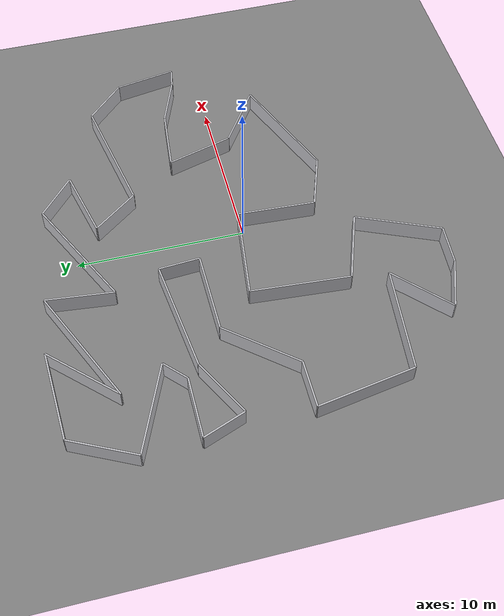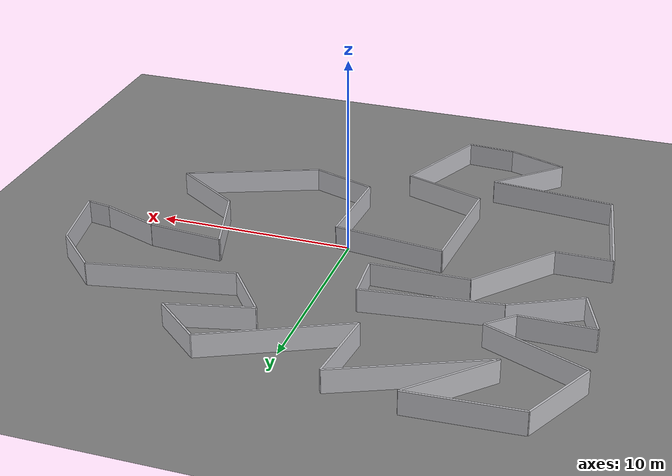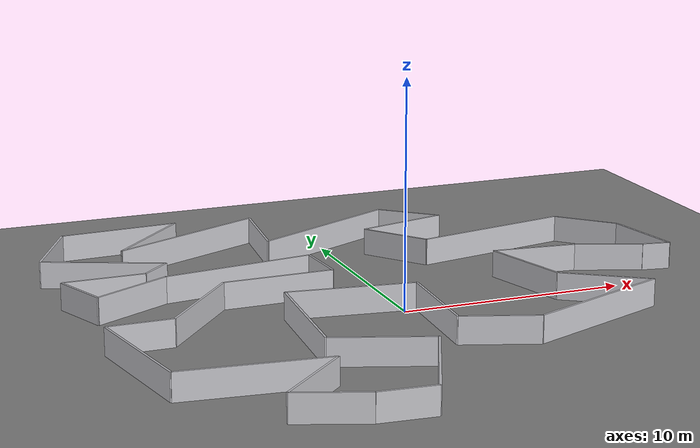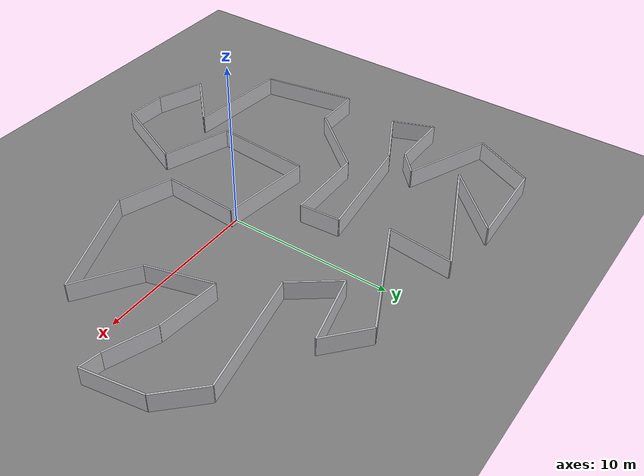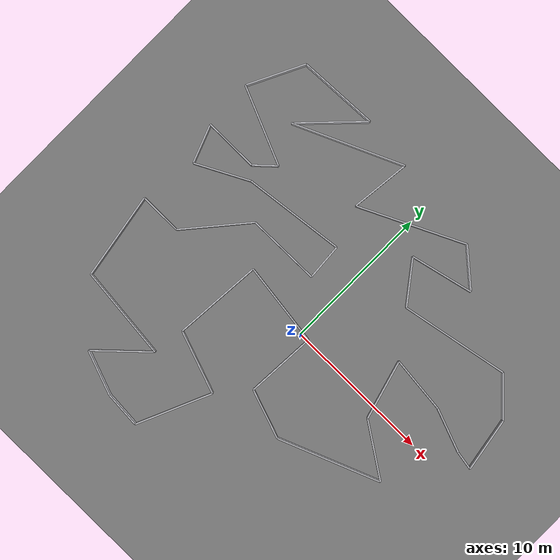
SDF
<?xml version='1.0'?>
<sdf version='1.9'>
  <world name='poly9_world'>
    <physics name='default_physics' type='ode'>
      <max_step_size>0.001</max_step_size>
      <real_time_factor>1.0</real_time_factor>
    </physics>
    <plugin filename='ignition-gazebo-physics-system' name='gz::sim::systems::Physics'/>
    <plugin filename='ignition-gazebo-scene-broadcaster-system' name='gz::sim::systems::SceneBroadcaster'/>
    <plugin filename='ignition-gazebo-user-commands-system' name='gz::sim::systems::UserCommands'/>
    <plugin filename='ignition-gazebo-contact-system' name='gz::sim::systems::Contact'/>

    <light type='directional' name='sun'>
      <cast_shadows>true</cast_shadows>
      <pose>0 0 10 0 0 0</pose>
      <diffuse>0.8 0.8 0.8 1</diffuse>
      <direction>-0.5 0.1 -0.9</direction>
    </light>

    <model name='ground_plane'>
      <static>true</static>
      <link name='link'>
        <collision name='collision'>
          <geometry><plane><normal>0 0 1</normal><size>37.04 33.96</size></plane></geometry>
        </collision>
        <visual name='visual'>
          <geometry><plane><normal>0 0 1</normal><size>37.04 33.96</size></plane></geometry>
          <material><ambient>0.5 0.5 0.5 1</ambient></material>
        </visual>
      </link>
    </model>

    <!-- Walls extruded from poly9 (39 vertices), scale=0.03 m/unit -->
    <model name='wall_0'>
      <static>true</static>
      <pose>-6.2785 10.6500 0.6000 0 0 0.421058</pose>
      <link name='link'>
        <collision name='collision'>
          <geometry><box><size>7.6540 0.1000 1.2000</size></box></geometry>
        </collision>
        <visual name='visual'>
          <geometry><box><size>7.6540 0.1000 1.2000</size></box></geometry>
          <material>
            <ambient>0.7 0.7 0.72 1</ambient>
            <diffuse>0.75 0.75 0.77 1</diffuse>
          </material>
        </visual>
      </link>
    </model>
    <model name='wall_1'>
      <static>true</static>
      <pose>-3.0000 10.2215 0.6000 0 0 -1.677875</pose>
      <link name='link'>
        <collision name='collision'>
          <geometry><box><size>4.0085 0.1000 1.2000</size></box></geometry>
        </collision>
        <visual name='visual'>
          <geometry><box><size>4.0085 0.1000 1.2000</size></box></geometry>
          <material>
            <ambient>0.7 0.7 0.72 1</ambient>
            <diffuse>0.75 0.75 0.77 1</diffuse>
          </material>
        </visual>
      </link>
    </model>
    <model name='wall_2'>
      <static>true</static>
      <pose>0.1285 9.8358 0.6000 0 0 0.448147</pose>
      <link name='link'>
        <collision name='collision'>
          <geometry><box><size>7.4180 0.1000 1.2000</size></box></geometry>
        </collision>
        <visual name='visual'>
          <geometry><box><size>7.4180 0.1000 1.2000</size></box></geometry>
          <material>
            <ambient>0.7 0.7 0.72 1</ambient>
            <diffuse>0.75 0.75 0.77 1</diffuse>
          </material>
        </visual>
      </link>
    </model>
    <model name='wall_3'>
      <static>true</static>
      <pose>4.6071 10.4571 0.6000 0 0 -0.714814</pose>
      <link name='link'>
        <collision name='collision'>
          <geometry><box><size>3.0079 0.1000 1.2000</size></box></geometry>
        </collision>
        <visual name='visual'>
          <geometry><box><size>3.0079 0.1000 1.2000</size></box></geometry>
          <material>
            <ambient>0.7 0.7 0.72 1</ambient>
            <diffuse>0.75 0.75 0.77 1</diffuse>
          </material>
        </visual>
      </link>
    </model>
    <model name='wall_4'>
      <static>true</static>
      <pose>3.6643 8.9785 0.6000 0 0 -2.908825</pose>
      <link name='link'>
        <collision name='collision'>
          <geometry><box><size>4.2723 0.1000 1.2000</size></box></geometry>
        </collision>
        <visual name='visual'>
          <geometry><box><size>4.2723 0.1000 1.2000</size></box></geometry>
          <material>
            <ambient>0.7 0.7 0.72 1</ambient>
            <diffuse>0.75 0.75 0.77 1</diffuse>
          </material>
        </visual>
      </link>
    </model>
    <model name='wall_5'>
      <static>true</static>
      <pose>2.5714 7.2000 0.6000 0 0 -0.916777</pose>
      <link name='link'>
        <collision name='collision'>
          <geometry><box><size>3.2402 0.1000 1.2000</size></box></geometry>
        </collision>
        <visual name='visual'>
          <geometry><box><size>3.2402 0.1000 1.2000</size></box></geometry>
          <material>
            <ambient>0.7 0.7 0.72 1</ambient>
            <diffuse>0.75 0.75 0.77 1</diffuse>
          </material>
        </visual>
      </link>
    </model>
    <model name='wall_6'>
      <static>true</static>
      <pose>7.1571 6.6000 0.6000 0 0 0.188244</pose>
      <link name='link'>
        <collision name='collision'>
          <geometry><box><size>7.3295 0.1000 1.2000</size></box></geometry>
        </collision>
        <visual name='visual'>
          <geometry><box><size>7.3295 0.1000 1.2000</size></box></geometry>
          <material>
            <ambient>0.7 0.7 0.72 1</ambient>
            <diffuse>0.75 0.75 0.77 1</diffuse>
          </material>
        </visual>
      </link>
    </model>
    <model name='wall_7'>
      <static>true</static>
      <pose>11.8285 6.2143 0.6000 0 0 -0.785398</pose>
      <link name='link'>
        <collision name='collision'>
          <geometry><box><size>3.0305 0.1000 1.2000</size></box></geometry>
        </collision>
        <visual name='visual'>
          <geometry><box><size>3.0305 0.1000 1.2000</size></box></geometry>
          <material>
            <ambient>0.7 0.7 0.72 1</ambient>
            <diffuse>0.75 0.75 0.77 1</diffuse>
          </material>
        </visual>
      </link>
    </model>
    <model name='wall_8'>
      <static>true</static>
      <pose>13.2215 3.3215 0.6000 0 0 -1.396115</pose>
      <link name='link'>
        <collision name='collision'>
          <geometry><box><size>3.6992 0.1000 1.2000</size></box></geometry>
        </collision>
        <visual name='visual'>
          <geometry><box><size>3.6992 0.1000 1.2000</size></box></geometry>
          <material>
            <ambient>0.7 0.7 0.72 1</ambient>
            <diffuse>0.75 0.75 0.77 1</diffuse>
          </material>
        </visual>
      </link>
    </model>
    <model name='wall_9'>
      <static>true</static>
      <pose>12.9215 1.6071 0.6000 0 0 2.970930</pose>
      <link name='link'>
        <collision name='collision'>
          <geometry><box><size>1.2612 0.1000 1.2000</size></box></geometry>
        </collision>
        <visual name='visual'>
          <geometry><box><size>1.2612 0.1000 1.2000</size></box></geometry>
          <material>
            <ambient>0.7 0.7 0.72 1</ambient>
            <diffuse>0.75 0.75 0.77 1</diffuse>
          </material>
        </visual>
      </link>
    </model>
    <model name='wall_10'>
      <static>true</static>
      <pose>10.8643 2.2500 0.6000 0 0 2.784392</pose>
      <link name='link'>
        <collision name='collision'>
          <geometry><box><size>3.0647 0.1000 1.2000</size></box></geometry>
        </collision>
        <visual name='visual'>
          <geometry><box><size>3.0647 0.1000 1.2000</size></box></geometry>
          <material>
            <ambient>0.7 0.7 0.72 1</ambient>
            <diffuse>0.75 0.75 0.77 1</diffuse>
          </material>
        </visual>
      </link>
    </model>
    <model name='wall_11'>
      <static>true</static>
      <pose>7.5214 2.9785 0.6000 0 0 3.040873</pose>
      <link name='link'>
        <collision name='collision'>
          <geometry><box><size>3.8339 0.1000 1.2000</size></box></geometry>
        </collision>
        <visual name='visual'>
          <geometry><box><size>3.8339 0.1000 1.2000</size></box></geometry>
          <material>
            <ambient>0.7 0.7 0.72 1</ambient>
            <diffuse>0.75 0.75 0.77 1</diffuse>
          </material>
        </visual>
      </link>
    </model>
    <model name='wall_12'>
      <static>true</static>
      <pose>6.1715 1.2000 0.6000 0 0 -1.295303</pose>
      <link name='link'>
        <collision name='collision'>
          <geometry><box><size>4.0971 0.1000 1.2000</size></box></geometry>
        </collision>
        <visual name='visual'>
          <geometry><box><size>4.0971 0.1000 1.2000</size></box></geometry>
          <material>
            <ambient>0.7 0.7 0.72 1</ambient>
            <diffuse>0.75 0.75 0.77 1</diffuse>
          </material>
        </visual>
      </link>
    </model>
    <model name='wall_13'>
      <static>true</static>
      <pose>8.4215 -1.9071 0.6000 0 0 -0.590982</pose>
      <link name='link'>
        <collision name='collision'>
          <geometry><box><size>4.0770 0.1000 1.2000</size></box></geometry>
        </collision>
        <visual name='visual'>
          <geometry><box><size>4.0770 0.1000 1.2000</size></box></geometry>
          <material>
            <ambient>0.7 0.7 0.72 1</ambient>
            <diffuse>0.75 0.75 0.77 1</diffuse>
          </material>
        </visual>
      </link>
    </model>
    <model name='wall_14'>
      <static>true</static>
      <pose>6.8356 -4.3500 0.6000 0 0 -2.762223</pose>
      <link name='link'>
        <collision name='collision'>
          <geometry><box><size>7.0590 0.1000 1.2000</size></box></geometry>
        </collision>
        <visual name='visual'>
          <geometry><box><size>7.0590 0.1000 1.2000</size></box></geometry>
          <material>
            <ambient>0.7 0.7 0.72 1</ambient>
            <diffuse>0.75 0.75 0.77 1</diffuse>
          </material>
        </visual>
      </link>
    </model>
    <model name='wall_15'>
      <static>true</static>
      <pose>1.9500 -5.1000 0.6000 0 0 2.807906</pose>
      <link name='link'>
        <collision name='collision'>
          <geometry><box><size>3.4018 0.1000 1.2000</size></box></geometry>
        </collision>
        <visual name='visual'>
          <geometry><box><size>3.4018 0.1000 1.2000</size></box></geometry>
          <material>
            <ambient>0.7 0.7 0.72 1</ambient>
            <diffuse>0.75 0.75 0.77 1</diffuse>
          </material>
        </visual>
      </link>
    </model>
    <model name='wall_16'>
      <static>true</static>
      <pose>0.4714 -2.2071 0.6000 0 0 1.515817</pose>
      <link name='link'>
        <collision name='collision'>
          <geometry><box><size>4.6787 0.1000 1.2000</size></box></geometry>
        </collision>
        <visual name='visual'>
          <geometry><box><size>4.6787 0.1000 1.2000</size></box></geometry>
          <material>
            <ambient>0.7 0.7 0.72 1</ambient>
            <diffuse>0.75 0.75 0.77 1</diffuse>
          </material>
        </visual>
      </link>
    </model>
    <model name='wall_17'>
      <static>true</static>
      <pose>-2.2071 0.4929 0.6000 0 0 3.012571</pose>
      <link name='link'>
        <collision name='collision'>
          <geometry><box><size>5.6613 0.1000 1.2000</size></box></geometry>
        </collision>
        <visual name='visual'>
          <geometry><box><size>5.6613 0.1000 1.2000</size></box></geometry>
          <material>
            <ambient>0.7 0.7 0.72 1</ambient>
            <diffuse>0.75 0.75 0.77 1</diffuse>
          </material>
        </visual>
      </link>
    </model>
    <model name='wall_18'>
      <static>true</static>
      <pose>-5.2286 -2.1000 0.6000 0 0 -1.643156</pose>
      <link name='link'>
        <collision name='collision'>
          <geometry><box><size>5.9297 0.1000 1.2000</size></box></geometry>
        </collision>
        <visual name='visual'>
          <geometry><box><size>5.9297 0.1000 1.2000</size></box></geometry>
          <material>
            <ambient>0.7 0.7 0.72 1</ambient>
            <diffuse>0.75 0.75 0.77 1</diffuse>
          </material>
        </visual>
      </link>
    </model>
    <model name='wall_19'>
      <static>true</static>
      <pose>-3.3858 -5.7856 0.6000 0 0 -0.340379</pose>
      <link name='link'>
        <collision name='collision'>
          <geometry><box><size>4.3646 0.1000 1.2000</size></box></geometry>
        </collision>
        <visual name='visual'>
          <geometry><box><size>4.3646 0.1000 1.2000</size></box></geometry>
          <material>
            <ambient>0.7 0.7 0.72 1</ambient>
            <diffuse>0.75 0.75 0.77 1</diffuse>
          </material>
        </visual>
      </link>
    </model>
    <model name='wall_20'>
      <static>true</static>
      <pose>-2.3787 -8.9142 0.6000 0 0 -1.983207</pose>
      <link name='link'>
        <collision name='collision'>
          <geometry><box><size>5.2393 0.1000 1.2000</size></box></geometry>
        </collision>
        <visual name='visual'>
          <geometry><box><size>5.2393 0.1000 1.2000</size></box></geometry>
          <material>
            <ambient>0.7 0.7 0.72 1</ambient>
            <diffuse>0.75 0.75 0.77 1</diffuse>
          </material>
        </visual>
      </link>
    </model>
    <model name='wall_21'>
      <static>true</static>
      <pose>-4.6500 -11.2285 0.6000 0 0 3.071577</pose>
      <link name='link'>
        <collision name='collision'>
          <geometry><box><size>2.4486 0.1000 1.2000</size></box></geometry>
        </collision>
        <visual name='visual'>
          <geometry><box><size>2.4486 0.1000 1.2000</size></box></geometry>
          <material>
            <ambient>0.7 0.7 0.72 1</ambient>
            <diffuse>0.75 0.75 0.77 1</diffuse>
          </material>
        </visual>
      </link>
    </model>
    <model name='wall_22'>
      <static>true</static>
      <pose>-7.3285 -10.6071 0.6000 0 0 2.789256</pose>
      <link name='link'>
        <collision name='collision'>
          <geometry><box><size>3.1053 0.1000 1.2000</size></box></geometry>
        </collision>
        <visual name='visual'>
          <geometry><box><size>3.1053 0.1000 1.2000</size></box></geometry>
          <material>
            <ambient>0.7 0.7 0.72 1</ambient>
            <diffuse>0.75 0.75 0.77 1</diffuse>
          </material>
        </visual>
      </link>
    </model>
    <model name='wall_23'>
      <static>true</static>
      <pose>-7.2644 -8.6356 0.6000 0 0 0.756391</pose>
      <link name='link'>
        <collision name='collision'>
          <geometry><box><size>4.1837 0.1000 1.2000</size></box></geometry>
        </collision>
        <visual name='visual'>
          <geometry><box><size>4.1837 0.1000 1.2000</size></box></geometry>
          <material>
            <ambient>0.7 0.7 0.72 1</ambient>
            <diffuse>0.75 0.75 0.77 1</diffuse>
          </material>
        </visual>
      </link>
    </model>
    <model name='wall_24'>
      <static>true</static>
      <pose>-8.8929 -6.8785 0.6000 0 0 3.039897</pose>
      <link name='link'>
        <collision name='collision'>
          <geometry><box><size>6.3327 0.1000 1.2000</size></box></geometry>
        </collision>
        <visual name='visual'>
          <geometry><box><size>6.3327 0.1000 1.2000</size></box></geometry>
          <material>
            <ambient>0.7 0.7 0.72 1</ambient>
            <diffuse>0.75 0.75 0.77 1</diffuse>
          </material>
        </visual>
      </link>
    </model>
    <model name='wall_25'>
      <static>true</static>
      <pose>-12.5358 -3.6642 0.6000 0 0 1.739558</pose>
      <link name='link'>
        <collision name='collision'>
          <geometry><box><size>5.8692 0.1000 1.2000</size></box></geometry>
        </collision>
        <visual name='visual'>
          <geometry><box><size>5.8692 0.1000 1.2000</size></box></geometry>
          <material>
            <ambient>0.7 0.7 0.72 1</ambient>
            <diffuse>0.75 0.75 0.77 1</diffuse>
          </material>
        </visual>
      </link>
    </model>
    <model name='wall_26'>
      <static>true</static>
      <pose>-11.6143 -0.7713 0.6000 0 0 0.000000</pose>
      <link name='link'>
        <collision name='collision'>
          <geometry><box><size>2.8287 0.1000 1.2000</size></box></geometry>
        </collision>
        <visual name='visual'>
          <geometry><box><size>2.8287 0.1000 1.2000</size></box></geometry>
          <material>
            <ambient>0.7 0.7 0.72 1</ambient>
            <diffuse>0.75 0.75 0.77 1</diffuse>
          </material>
        </visual>
      </link>
    </model>
    <model name='wall_27'>
      <static>true</static>
      <pose>-8.5929 1.1358 0.6000 0 0 0.870560</pose>
      <link name='link'>
        <collision name='collision'>
          <geometry><box><size>4.9879 0.1000 1.2000</size></box></geometry>
        </collision>
        <visual name='visual'>
          <geometry><box><size>4.9879 0.1000 1.2000</size></box></geometry>
          <material>
            <ambient>0.7 0.7 0.72 1</ambient>
            <diffuse>0.75 0.75 0.77 1</diffuse>
          </material>
        </visual>
      </link>
    </model>
    <model name='wall_28'>
      <static>true</static>
      <pose>-4.5214 3.0644 0.6000 0 0 0.008704</pose>
      <link name='link'>
        <collision name='collision'>
          <geometry><box><size>4.9289 0.1000 1.2000</size></box></geometry>
        </collision>
        <visual name='visual'>
          <geometry><box><size>4.9289 0.1000 1.2000</size></box></geometry>
          <material>
            <ambient>0.7 0.7 0.72 1</ambient>
            <diffuse>0.75 0.75 0.77 1</diffuse>
          </material>
        </visual>
      </link>
    </model>
    <model name='wall_29'>
      <static>true</static>
      <pose>-2.1429 4.3072 0.6000 0 0 1.640926</pose>
      <link name='link'>
        <collision name='collision'>
          <geometry><box><size>2.4489 0.1000 1.2000</size></box></geometry>
        </collision>
        <visual name='visual'>
          <geometry><box><size>2.4489 0.1000 1.2000</size></box></geometry>
          <material>
            <ambient>0.7 0.7 0.72 1</ambient>
            <diffuse>0.75 0.75 0.77 1</diffuse>
          </material>
        </visual>
      </link>
    </model>
    <model name='wall_30'>
      <static>true</static>
      <pose>-5.6143 5.1214 0.6000 0 0 -3.021881</pose>
      <link name='link'>
        <collision name='collision'>
          <geometry><box><size>6.8201 0.1000 1.2000</size></box></geometry>
        </collision>
        <visual name='visual'>
          <geometry><box><size>6.8201 0.1000 1.2000</size></box></geometry>
          <material>
            <ambient>0.7 0.7 0.72 1</ambient>
            <diffuse>0.75 0.75 0.77 1</diffuse>
          </material>
        </visual>
      </link>
    </model>
    <model name='wall_31'>
      <static>true</static>
      <pose>-10.6929 3.8356 0.6000 0 0 -2.662891</pose>
      <link name='link'>
        <collision name='collision'>
          <geometry><box><size>3.8146 0.1000 1.2000</size></box></geometry>
        </collision>
        <visual name='visual'>
          <geometry><box><size>3.8146 0.1000 1.2000</size></box></geometry>
          <material>
            <ambient>0.7 0.7 0.72 1</ambient>
            <diffuse>0.75 0.75 0.77 1</diffuse>
          </material>
        </visual>
      </link>
    </model>
    <model name='wall_32'>
      <static>true</static>
      <pose>-12.8573 4.2000 0.6000 0 0 1.933344</pose>
      <link name='link'>
        <collision name='collision'>
          <geometry><box><size>2.6586 0.1000 1.2000</size></box></geometry>
        </collision>
        <visual name='visual'>
          <geometry><box><size>2.6586 0.1000 1.2000</size></box></geometry>
          <material>
            <ambient>0.7 0.7 0.72 1</ambient>
            <diffuse>0.75 0.75 0.77 1</diffuse>
          </material>
        </visual>
      </link>
    </model>
    <model name='wall_33'>
      <static>true</static>
      <pose>-11.5072 5.4429 0.6000 0 0 0.000000</pose>
      <link name='link'>
        <collision name='collision'>
          <geometry><box><size>3.6429 0.1000 1.2000</size></box></geometry>
        </collision>
        <visual name='visual'>
          <geometry><box><size>3.6429 0.1000 1.2000</size></box></geometry>
          <material>
            <ambient>0.7 0.7 0.72 1</ambient>
            <diffuse>0.75 0.75 0.77 1</diffuse>
          </material>
        </visual>
      </link>
    </model>
    <model name='wall_34'>
      <static>true</static>
      <pose>-9.0644 6.0214 0.6000 0 0 0.749663</pose>
      <link name='link'>
        <collision name='collision'>
          <geometry><box><size>1.6981 0.1000 1.2000</size></box></geometry>
        </collision>
        <visual name='visual'>
          <geometry><box><size>1.6981 0.1000 1.2000</size></box></geometry>
          <material>
            <ambient>0.7 0.7 0.72 1</ambient>
            <diffuse>0.75 0.75 0.77 1</diffuse>
          </material>
        </visual>
      </link>
    </model>
    <model name='wall_35'>
      <static>true</static>
      <pose>-10.9715 7.6715 0.6000 0 0 2.740789</pose>
      <link name='link'>
        <collision name='collision'>
          <geometry><box><size>5.4924 0.1000 1.2000</size></box></geometry>
        </collision>
        <visual name='visual'>
          <geometry><box><size>5.4924 0.1000 1.2000</size></box></geometry>
          <material>
            <ambient>0.7 0.7 0.72 1</ambient>
            <diffuse>0.75 0.75 0.77 1</diffuse>
          </material>
        </visual>
      </link>
    </model>
    <model name='wall_36'>
      <static>true</static>
      <pose>-12.6000 10.5644 0.6000 0 0 1.111870</pose>
      <link name='link'>
        <collision name='collision'>
          <geometry><box><size>4.0633 0.1000 1.2000</size></box></geometry>
        </collision>
        <visual name='visual'>
          <geometry><box><size>4.0633 0.1000 1.2000</size></box></geometry>
          <material>
            <ambient>0.7 0.7 0.72 1</ambient>
            <diffuse>0.75 0.75 0.77 1</diffuse>
          </material>
        </visual>
      </link>
    </model>
    <model name='wall_37'>
      <static>true</static>
      <pose>-9.0000 12.5144 0.6000 0 0 0.047575</pose>
      <link name='link'>
        <collision name='collision'>
          <geometry><box><size>5.4061 0.1000 1.2000</size></box></geometry>
        </collision>
        <visual name='visual'>
          <geometry><box><size>5.4061 0.1000 1.2000</size></box></geometry>
          <material>
            <ambient>0.7 0.7 0.72 1</ambient>
            <diffuse>0.75 0.75 0.77 1</diffuse>
          </material>
        </visual>
      </link>
    </model>
    <model name='wall_38'>
      <static>true</static>
      <pose>-8.0356 10.8643 0.6000 0 0 -2.343987</pose>
      <link name='link'>
        <collision name='collision'>
          <geometry><box><size>4.9702 0.1000 1.2000</size></box></geometry>
        </collision>
        <visual name='visual'>
          <geometry><box><size>4.9702 0.1000 1.2000</size></box></geometry>
          <material>
            <ambient>0.7 0.7 0.72 1</ambient>
            <diffuse>0.75 0.75 0.77 1</diffuse>
          </material>
        </visual>
      </link>
    </model>

  </world>
</sdf>
